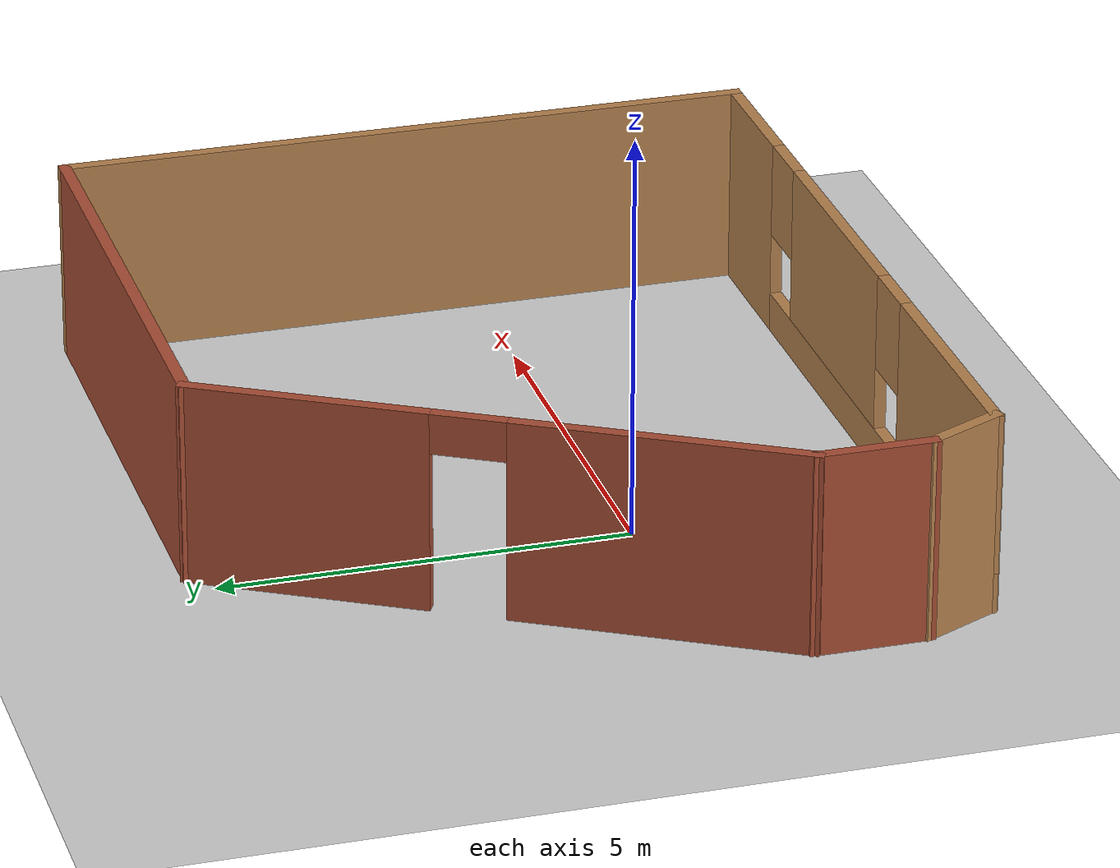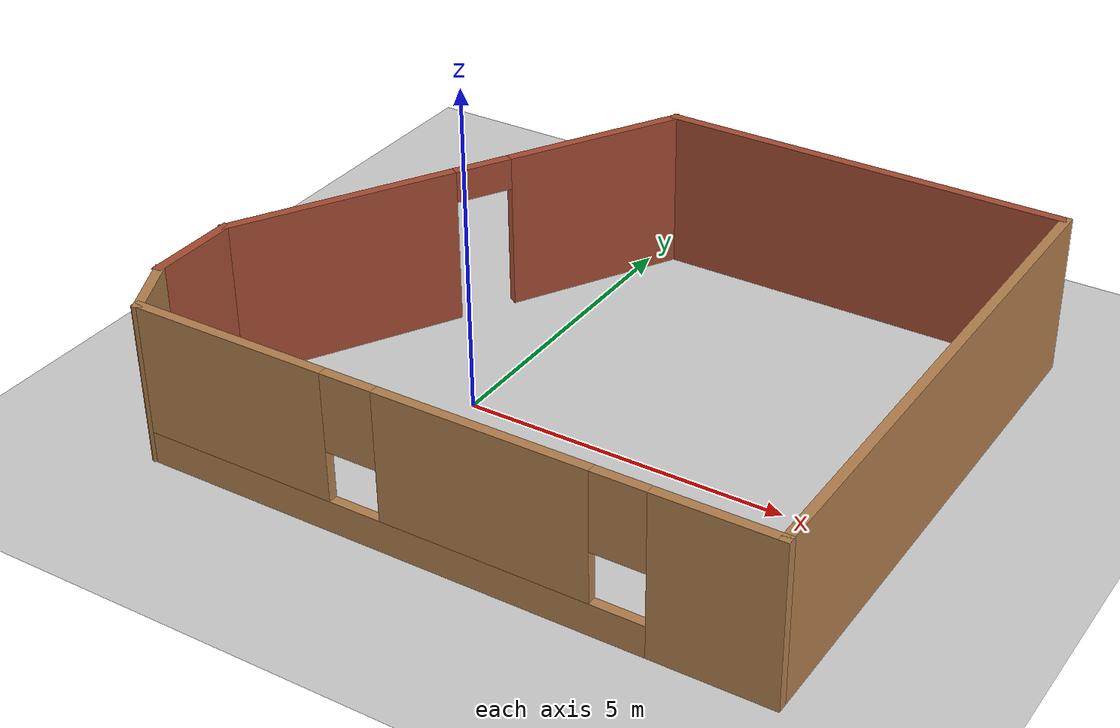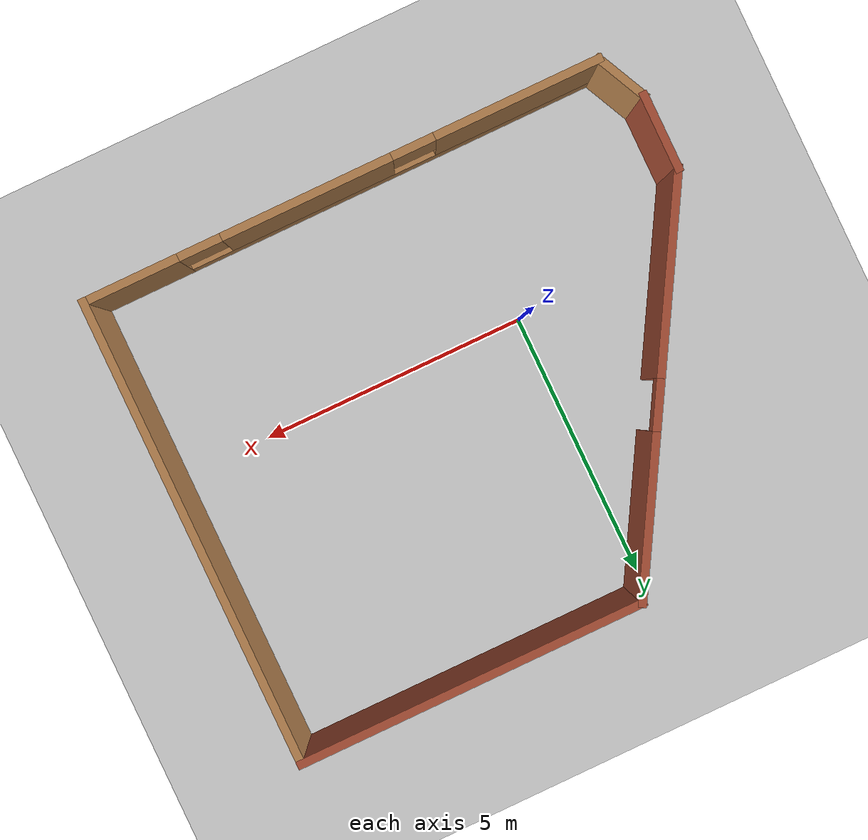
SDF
<sdf version="1.7">
 <world name="default">
  <light name="sun" type="directional">
   <pose>0 0 10 0 -0 0</pose>
   <diffuse>0.8 0.8 0.8 1</diffuse>
   <specular>0.2 0.2 0.2 1</specular>
   <attenuation>
    <range>1000</range>
    <constant>0.9</constant>
    <linear>0.01</linear>
    <quadratic>0.001</quadratic>
   </attenuation>
   <direction>-0.5 0.1 -0.9</direction>
   <spot><inner_angle>0</inner_angle><outer_angle>0</outer_angle><falloff>0</falloff></spot>
  </light>
  <model name="ground_plane">
   <static>1</static>
   <link name="link">
    <collision name="collision">
     <geometry><plane><normal>0 0 1</normal><size>100 100</size></plane></geometry>
     <surface><friction><ode><mu>100</mu><mu2>50</mu2></ode></friction></surface>
    </collision>
    <visual name="visual">
     <cast_shadows>0</cast_shadows>
     <geometry><plane><normal>0 0 1</normal><size>100 100</size></plane></geometry>
     <material>
      <script><uri>file://media/materials/scripts/gazebo.material</uri><name>Gazebo/Grey</name></script>
     </material>
    </visual>
   </link>
  </model>
  <gravity>0 0 -9.8</gravity>
  <magnetic_field>6e-06 2.3e-05 -4.2e-05</magnetic_field>
  <atmosphere type="adiabatic"/>
  <physics type="ode">
   <max_step_size>0.001</max_step_size>
   <real_time_factor>1</real_time_factor>
   <real_time_update_rate>1000</real_time_update_rate>
  </physics>
  <scene><ambient>0.4 0.4 0.4 1</ambient><background>0.7 0.7 0.7 1</background><shadows>1</shadows></scene>
  <audio><device>default</device></audio>
  <spherical_coordinates>
   <surface_model>EARTH_WGS84</surface_model>
   <latitude_deg>0</latitude_deg>
   <longitude_deg>0</longitude_deg>
   <elevation>0</elevation>
   <heading_deg>0</heading_deg>
  </spherical_coordinates>
  <model name="robot1_building">
   <pose>1.62878 0.946473 0 0 -0 0</pose>
   <link name="Wall_1">
    <collision name="Wall_1_Collision">
     <geometry><box><size>1.5 0.15 2.5</size></box></geometry>
     <pose>0 0 1.25 0 -0 0</pose>
    </collision>
    <visual name="Wall_1_Visual">
     <pose>0 0 1.25 0 -0 0</pose>
     <geometry><box><size>1.5 0.15 2.5</size></box></geometry>
     <material>
      <script><uri>file://media/materials/scripts/gazebo.material</uri><name>Gazebo/Bricks</name></script>
      <ambient>1 1 1 1</ambient>
     </material>
     <meta><layer>0</layer></meta>
    </visual>
    <pose>-4.99877 -2.74147 0 0 -0 1.5708</pose>
   </link>
   <link name="Wall_2">
    <pose>-3.16127 1.11617 0 0 -0 1.0472</pose>
    <visual name="Wall_2_Visual_0">
     <pose>-1.9362 0 1.25 0 -0 0</pose>
     <geometry><box><size>3.6276 0.15 2.5</size></box></geometry>
     <material>
      <script><uri>file://media/materials/scripts/gazebo.material</uri><name>Gazebo/Bricks</name></script>
      <ambient>1 1 1 1</ambient>
     </material>
     <meta><layer>0</layer></meta>
    </visual>
    <collision name="Wall_2_Collision_0">
     <geometry><box><size>3.6276 0.15 2.5</size></box></geometry>
     <pose>-1.9362 0 1.25 0 -0 0</pose>
    </collision>
    <visual name="Wall_2_Visual_1">
     <pose>2.2638 0 1.25 0 -0 0</pose>
     <geometry><box><size>2.9724 0.15 2.5</size></box></geometry>
     <material>
      <script><uri>file://media/materials/scripts/gazebo.material</uri><name>Gazebo/Bricks</name></script>
      <ambient>1 1 1 1</ambient>
     </material>
     <meta><layer>0</layer></meta>
    </visual>
    <collision name="Wall_2_Collision_1">
     <geometry><box><size>2.9724 0.15 2.5</size></box></geometry>
     <pose>2.2638 0 1.25 0 -0 0</pose>
    </collision>
    <visual name="Wall_2_Visual_2">
     <pose>0.327603 0 2.25 0 -0 0</pose>
     <geometry><box><size>0.9 0.15 0.5</size></box></geometry>
     <material>
      <script><uri>file://media/materials/scripts/gazebo.material</uri><name>Gazebo/Bricks</name></script>
      <ambient>1 1 1 1</ambient>
     </material>
     <meta><layer>0</layer></meta>
    </visual>
    <collision name="Wall_2_Collision_2">
     <geometry><box><size>0.9 0.15 0.5</size></box></geometry>
     <pose>0.327603 0 2.25 0 -0 0</pose>
    </collision>
   </link>
   <link name="Wall_3">
    <collision name="Wall_3_Collision">
     <geometry><box><size>6.5 0.15 2.5</size></box></geometry>
     <pose>0 0 1.25 0 -0 0</pose>
    </collision>
    <visual name="Wall_3_Visual">
     <pose>0 0 1.25 0 -0 0</pose>
     <geometry><box><size>6.5 0.15 2.5</size></box></geometry>
     <material>
      <script><uri>file://media/materials/scripts/gazebo.material</uri><name>Gazebo/Bricks</name></script>
      <ambient>1 1 1 1</ambient>
     </material>
     <meta><layer>0</layer></meta>
    </visual>
    <pose>1.85122 4.29881 0 0 -0 0</pose>
   </link>
   <link name="Wall_4">
    <collision name="Wall_4_Collision">
     <geometry><box><size>8.75 0.15 2.5</size></box></geometry>
     <pose>0 0 1.25 0 -0 0</pose>
    </collision>
    <visual name="Wall_4_Visual">
     <pose>0 0 1.25 0 -0 0</pose>
     <geometry><box><size>8.75 0.15 2.5</size></box></geometry>
     <material>
      <script><uri>file://media/materials/scripts/gazebo.material</uri><name>Gazebo/Wood</name></script>
      <ambient>1 1 1 1</ambient>
     </material>
     <meta><layer>0</layer></meta>
    </visual>
    <pose>5.02623 -0.001186 0 0 -0 -1.5708</pose>
   </link>
   <link name="Wall_5">
    <pose>0.226225 -4.30119 0 0 -0 3.14159</pose>
    <visual name="Wall_5_Visual_0">
     <pose>-3.95573 0 1.25 0 -0 0</pose>
     <geometry><box><size>1.83853 0.15 2.5</size></box></geometry>
     <material>
      <script><uri>file://media/materials/scripts/gazebo.material</uri><name>Gazebo/Wood</name></script>
      <ambient>1 1 1 1</ambient>
     </material>
     <meta><layer>0</layer></meta>
    </visual>
    <collision name="Wall_5_Collision_0">
     <geometry><box><size>1.83853 0.15 2.5</size></box></geometry>
     <pose>-3.95573 0 1.25 0 -0 0</pose>
    </collision>
    <visual name="Wall_5_Visual_1">
     <pose>0.919267 0 0.25 0 -0 0</pose>
     <geometry><box><size>7.91147 0.15 0.5</size></box></geometry>
     <material>
      <script><uri>file://media/materials/scripts/gazebo.material</uri><name>Gazebo/Wood</name></script>
      <ambient>1 1 1 1</ambient>
     </material>
     <meta><layer>0</layer></meta>
    </visual>
    <collision name="Wall_5_Collision_1">
     <geometry><box><size>7.91147 0.15 0.5</size></box></geometry>
     <pose>0.919267 0 0.25 0 -0 0</pose>
    </collision>
    <visual name="Wall_5_Visual_2">
     <pose>-0.648866 0 1.5 0 -0 0</pose>
     <geometry><box><size>3.1752 0.15 2</size></box></geometry>
     <material>
      <script><uri>file://media/materials/scripts/gazebo.material</uri><name>Gazebo/Wood</name></script>
      <ambient>1 1 1 1</ambient>
     </material>
     <meta><layer>0</layer></meta>
    </visual>
    <collision name="Wall_5_Collision_2">
     <geometry><box><size>3.1752 0.15 2</size></box></geometry>
     <pose>-0.648866 0 1.5 0 -0 0</pose>
    </collision>
    <visual name="Wall_5_Visual_3">
     <pose>3.30687 0 1.5 0 -0 0</pose>
     <geometry><box><size>3.13627 0.15 2</size></box></geometry>
     <material>
      <script><uri>file://media/materials/scripts/gazebo.material</uri><name>Gazebo/Wood</name></script>
      <ambient>1 1 1 1</ambient>
     </material>
     <meta><layer>0</layer></meta>
    </visual>
    <collision name="Wall_5_Collision_3">
     <geometry><box><size>3.13627 0.15 2</size></box></geometry>
     <pose>3.30687 0 1.5 0 -0 0</pose>
    </collision>
    <visual name="Wall_5_Visual_4">
     <pose>-2.63647 0 1.9 0 -0 0</pose>
     <geometry><box><size>0.8 0.15 1.2</size></box></geometry>
     <material>
      <script><uri>file://media/materials/scripts/gazebo.material</uri><name>Gazebo/Wood</name></script>
      <ambient>1 1 1 1</ambient>
     </material>
     <meta><layer>0</layer></meta>
    </visual>
    <collision name="Wall_5_Collision_4">
     <geometry><box><size>0.8 0.15 1.2</size></box></geometry>
     <pose>-2.63647 0 1.9 0 -0 0</pose>
    </collision>
    <visual name="Wall_5_Visual_5">
     <pose>1.33873 0 1.9 0 -0 0</pose>
     <geometry><box><size>0.8 0.15 1.2</size></box></geometry>
     <material>
      <script><uri>file://media/materials/scripts/gazebo.material</uri><name>Gazebo/Wood</name></script>
      <ambient>1 1 1 1</ambient>
     </material>
     <meta><layer>0</layer></meta>
    </visual>
    <collision name="Wall_5_Collision_5">
     <geometry><box><size>0.8 0.15 1.2</size></box></geometry>
     <pose>1.33873 0 1.9 0 -0 0</pose>
    </collision>
   </link>
   <link name="Wall_7">
    <collision name="Wall_7_Collision">
     <geometry><box><size>1.1315 0.15 2.5</size></box></geometry>
     <pose>0 0 1.25 0 -0 0</pose>
    </collision>
    <visual name="Wall_7_Visual">
     <pose>0 0 1.25 0 -0 0</pose>
     <geometry><box><size>1.1315 0.15 2.5</size></box></geometry>
     <material>
      <script><uri>file://media/materials/scripts/gazebo.material</uri><name>Gazebo/Wood</name></script>
      <ambient>1 1 1 1</ambient>
     </material>
     <meta><layer>0</layer></meta>
    </visual>
    <pose>-4.78627 -3.85883 0 0 -0 -1.12297</pose>
   </link>
   <static>1</static>
  </model>
 </world>
</sdf>
